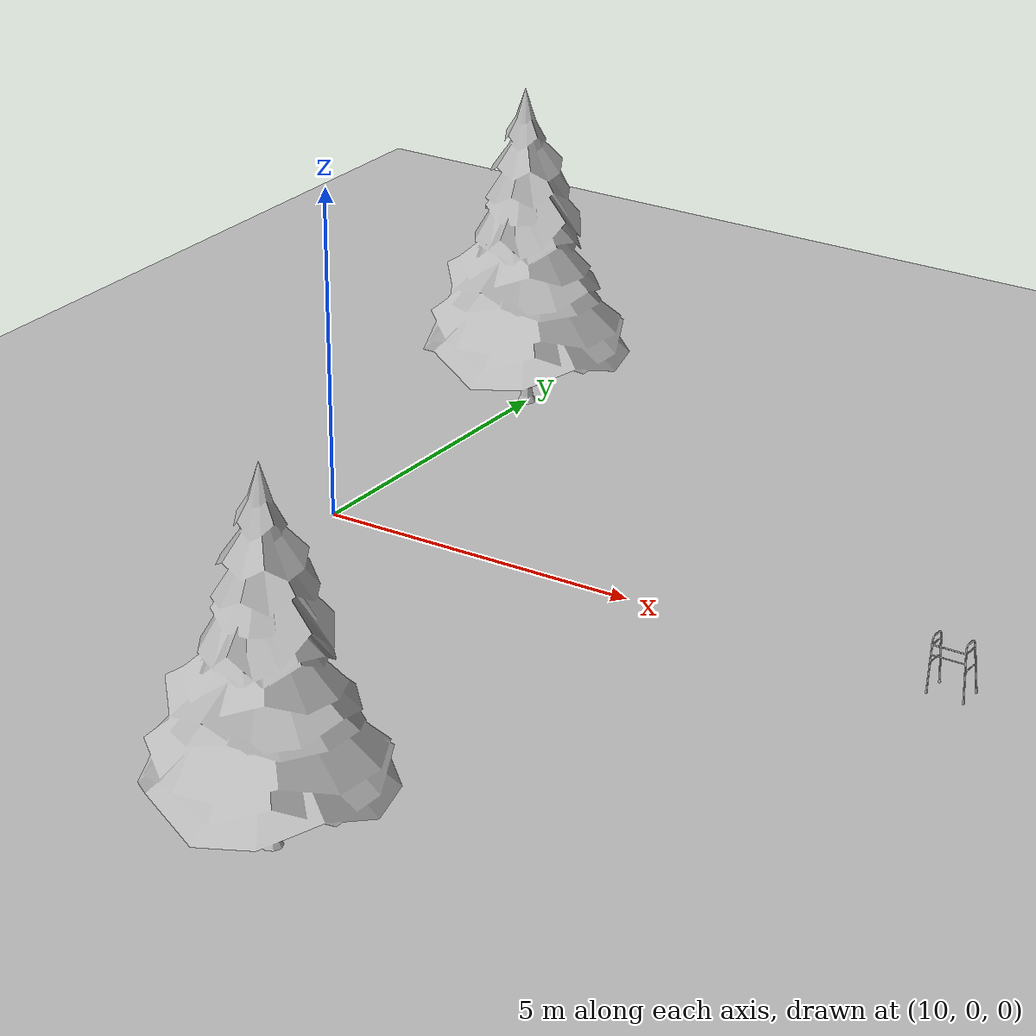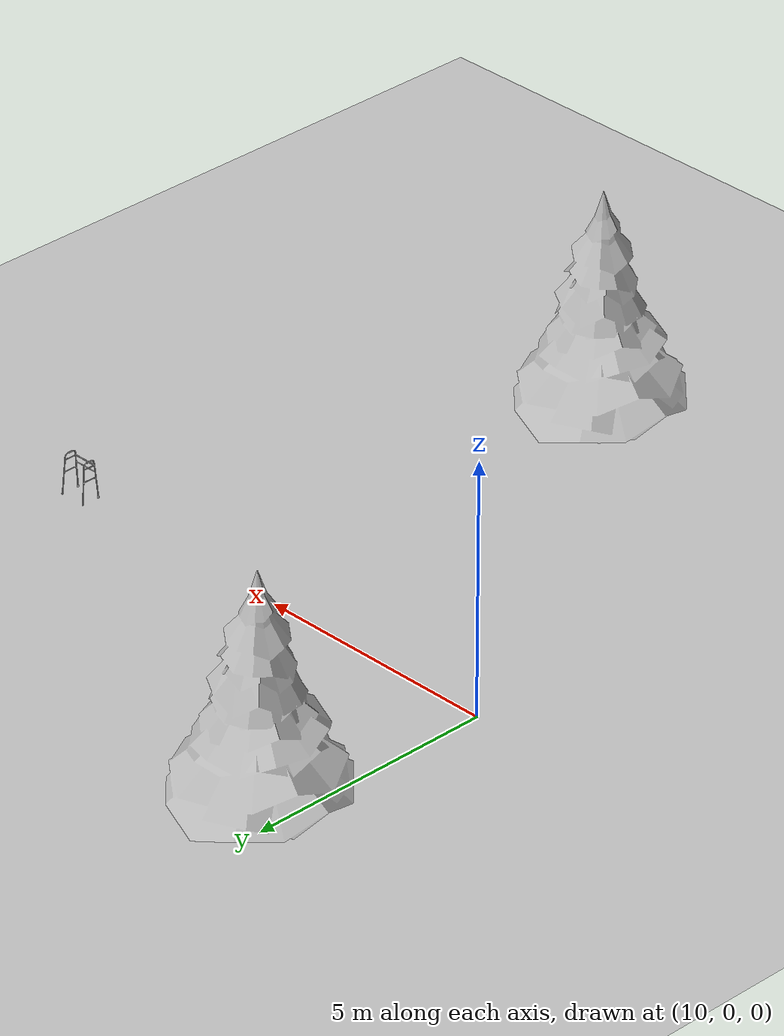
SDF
<?xml version="1.0" ?>
<sdf version="1.6">
  <world name="dynamic_world">
    <!-- Physics -->
    <physics type="ode">
      <max_step_size>0.001</max_step_size>
      <real_time_factor>1</real_time_factor>
      <real_time_update_rate>1000</real_time_update_rate>
    </physics>

    <!-- Scene -->
    <scene>
      <ambient>0.6 0.6 0.6 1</ambient>
      <background>0.7 0.8 0.9 1</background>
      <shadows>true</shadows>
      <grid>false</grid>
    </scene>

    <!-- Ground plane -->
    <include>
      <uri>model://ground_plane</uri>
    </include>

    <!-- Sun -->
    <include>
      <uri>model://sun</uri>
    </include>

    <!-- Physical Human Model -->
    <model name="human_target">
      <pose>20 0 0 0 0 0</pose>
      <link name="link">
        <inertial>
          <mass>80.0</mass>
          <inertia>
            <ixx>24.0</ixx>
            <ixy>0</ixy>
            <ixz>0</ixz>
            <iyy>24.0</iyy>
            <iyz>0</iyz>
            <izz>5.0</izz>
          </inertia>
        </inertial>
        <collision name="collision">
          <geometry>
            <cylinder>
              <radius>0.3</radius>
              <length>1.8</length>
            </cylinder>
          </geometry>
        </collision>
        <visual name="visual">
          <geometry>
            <mesh>
              <uri>model://walker/meshes/walker.dae</uri>
            </mesh>
          </geometry>
        </visual>
      </link>

      <!-- Movement Plugin -->
      <plugin name="planar_move" filename="libgazebo_ros_planar_move.so">
        <ros>
          <namespace>/target</namespace>
        </ros>
        <update_rate>50</update_rate>
        <publish_odom>true</publish_odom>
        <publish_odom_tf>true</publish_odom_tf>
        <odometry_frame>odom</odometry_frame>
        <robot_base_frame>link</robot_base_frame>
      </plugin>
    </model>

    <!-- Obstacles for more interesting evasion -->
    <model name="pine_tree_1">
      <include><uri>model://pine_tree</uri></include>
      <pose>10 5 0 0 0 0</pose>
    </model>
    <model name="pine_tree_2">
      <include><uri>model://pine_tree</uri></include>
      <pose>15 -8 0 0 0 0</pose>
    </model>

    <!-- Gazebo ROS State Plugin -->
    <plugin name="gazebo_ros_state" filename="libgazebo_ros_state.so">
      <ros>
        <namespace>/</namespace>
      </ros>
      <update_rate>10.0</update_rate>
    </plugin>
  </world>
</sdf>

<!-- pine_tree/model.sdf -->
<sdf version="1.6">
  <model name="pine_tree">
    <static>true</static>
    <link name="link">
      <collision name="collision">
        <geometry>
          <mesh>
            <uri>file://isr-testbed/pine_tree/meshes/pine_tree.dae</uri>
          </mesh>
        </geometry>
      </collision>
      <visual name="branch">
        <geometry>
          <mesh>
            <uri>file://isr-testbed/pine_tree/meshes/pine_tree.dae</uri>
            <submesh>
              <name>Branch</name>
            </submesh>
          </mesh>
        </geometry>
        <material>
          <script>
            <uri>file://isr-testbed/pine_tree/materials/scripts/</uri>
            <uri>file://isr-testbed/pine_tree/materials/textures/</uri>
            <name>PineTree/Branch</name>
          </script>
        </material>
      </visual>
      <visual name="bark">
        <geometry>
          <mesh>
            <uri>file://isr-testbed/pine_tree/meshes/pine_tree.dae</uri>
            <submesh>
              <name>Bark</name>
            </submesh>
          </mesh>
        </geometry>
        <material>
          <script>
            <uri>file://isr-testbed/pine_tree/materials/scripts/</uri>
            <uri>file://isr-testbed/pine_tree/materials/textures/</uri>
            <name>PineTree/Bark</name>
          </script>
        </material>
      </visual>
    </link>
  </model>
</sdf>
